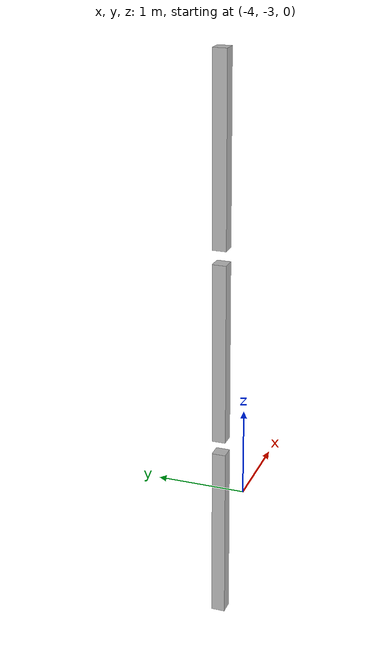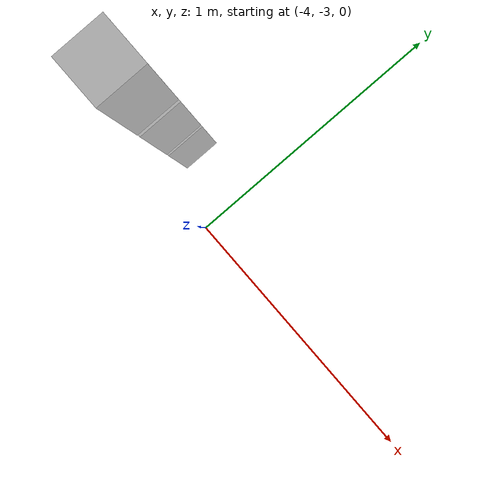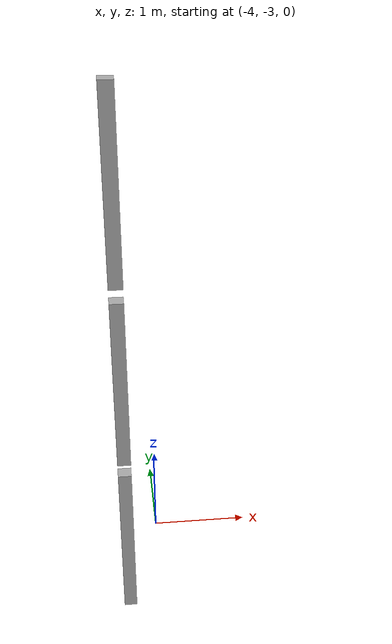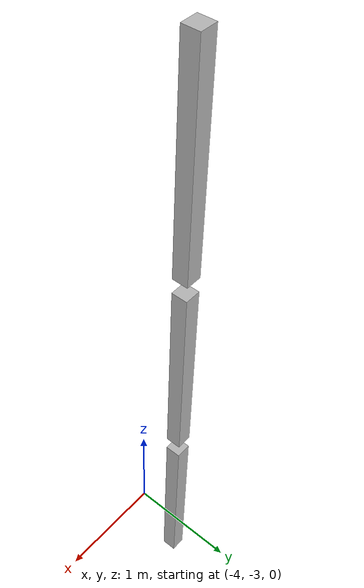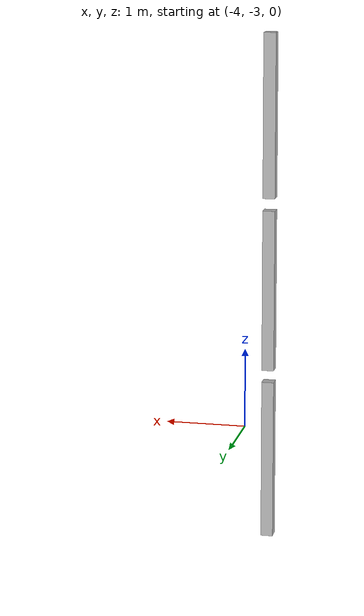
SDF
<sdf version="1.7">
 <world name="default">
  <model name="orthogonal_747_2.000.15_TS">
   <static>1</static>
   <link name="z_link_1_1_1">
    <inertial>
     <mass>1</mass>
     <inertia>
      <ixx>0.166667</ixx>
      <ixy>0</ixy>
      <ixz>0</ixz>
      <iyy>0.166667</iyy>
      <iyz>0</iyz>
      <izz>0.166667</izz>
     </inertia>
    </inertial>
    <pose>2.15 2.15 2.15 0 -0 0</pose>
    <visual name="visual_0">
     <laser_retro>1009</laser_retro>
     <geometry><box><size>0.15 1e-06 2</size></box></geometry>
     <material>
      <script><name>Gazebo/Grey</name><uri>file://media/materials/scripts/gazebo.material</uri></script>
      <shader type="pixel"><normal_map>__default__</normal_map></shader>
      <ambient>0.678 0.498 0.659 1</ambient>
      <diffuse>0.7 0.7 0.7 1</diffuse>
      <specular>0.01 0.01 0.01 1</specular>
      <emissive>0 0 0 1</emissive>
     </material>
     <pose>0 -0.075 0 0 -0 0</pose>
     <transparency>1</transparency>
    </visual>
    <visual name="visual_1">
     <laser_retro>1010</laser_retro>
     <geometry><box><size>0.15 1e-06 2</size></box></geometry>
     <material>
      <script><name>Gazebo/Grey</name><uri>file://media/materials/scripts/gazebo.material</uri></script>
      <shader type="pixel"><normal_map>__default__</normal_map></shader>
      <ambient>0.447 0.624 0.812 1</ambient>
      <diffuse>0.7 0.7 0.7 1</diffuse>
      <specular>0.01 0.01 0.01 1</specular>
      <emissive>0 0 0 1</emissive>
     </material>
     <pose>0 0.075 0 0 -0 0</pose>
     <transparency>1</transparency>
    </visual>
    <visual name="visual_2">
     <laser_retro>1011</laser_retro>
     <geometry><box><size>0.15 0.15 1e-06</size></box></geometry>
     <material>
      <script><name>Gazebo/Grey</name><uri>file://media/materials/scripts/gazebo.material</uri></script>
      <shader type="pixel"><normal_map>__default__</normal_map></shader>
      <ambient>0.988 0.686 0.243 1</ambient>
      <diffuse>0.7 0.7 0.7 1</diffuse>
      <specular>0.01 0.01 0.01 1</specular>
      <emissive>0 0 0 1</emissive>
     </material>
     <pose>0 0 -1 0 -0 0</pose>
     <transparency>1</transparency>
    </visual>
    <visual name="visual_3">
     <laser_retro>1012</laser_retro>
     <geometry><box><size>1e-06 0.15 2</size></box></geometry>
     <material>
      <script><name>Gazebo/Grey</name><uri>file://media/materials/scripts/gazebo.material</uri></script>
      <shader type="pixel"><normal_map>__default__</normal_map></shader>
      <ambient>0.988 0.914 0.31 1</ambient>
      <diffuse>0.7 0.7 0.7 1</diffuse>
      <specular>0.01 0.01 0.01 1</specular>
      <emissive>0 0 0 1</emissive>
     </material>
     <pose>0.075 0 0 0 -0 0</pose>
     <transparency>1</transparency>
    </visual>
    <visual name="visual_4">
     <laser_retro>1013</laser_retro>
     <geometry><box><size>0.15 0.15 1e-06</size></box></geometry>
     <material>
      <script><name>Gazebo/Grey</name><uri>file://media/materials/scripts/gazebo.material</uri></script>
      <shader type="pixel"><normal_map>__default__</normal_map></shader>
      <ambient>0.937 0.161 0.161 1</ambient>
      <diffuse>0.7 0.7 0.7 1</diffuse>
      <specular>0.01 0.01 0.01 1</specular>
      <emissive>0 0 0 1</emissive>
     </material>
     <pose>0 0 1 0 -0 0</pose>
     <transparency>1</transparency>
    </visual>
    <visual name="visual_5">
     <laser_retro>1014</laser_retro>
     <geometry><box><size>1e-06 0.15 2</size></box></geometry>
     <material>
      <script><name>Gazebo/Grey</name><uri>file://media/materials/scripts/gazebo.material</uri></script>
      <shader type="pixel"><normal_map>__default__</normal_map></shader>
      <ambient>0.541 0.886 0.204 1</ambient>
      <diffuse>0.7 0.7 0.7 1</diffuse>
      <specular>0.01 0.01 0.01 1</specular>
      <emissive>0 0 0 1</emissive>
     </material>
     <pose>-0.075 0 0 0 -0 0</pose>
     <transparency>1</transparency>
    </visual>
    <visual name="visual_texture">
     <geometry><box><size>0.149985 0.149985 1.9998</size></box></geometry>
     <material>
      <script>
       <uri>model://BASE_MODELS/simple_block_v2_textured/materials/scripts</uri>
       <uri>model://BASE_MODELS/simple_block_v2_textured/materials/textures</uri>
       <name>metal</name>
      </script>
     </material>
     <laser_retro>1015</laser_retro>
    </visual>
    <collision name="collision">
     <geometry><box><size>0.15 0.15 2</size></box></geometry>
     <surface>
      <friction>
       <ode><mu>1</mu><mu2>1</mu2><fdir1>0 0 0</fdir1><slip1>0</slip1><slip2>0</slip2></ode>
       <torsional>
        <coefficient>1</coefficient>
        <patch_radius>0</patch_radius>
        <surface_radius>0</surface_radius>
        <use_patch_radius>1</use_patch_radius>
        <ode><slip>0</slip></ode>
       </torsional>
      </friction>
      <bounce><restitution_coefficient>0</restitution_coefficient><threshold>1e+06</threshold></bounce>
      <contact>
       <collide_without_contact>0</collide_without_contact>
       <collide_without_contact_bitmask>1</collide_without_contact_bitmask>
       <collide_bitmask>1</collide_bitmask>
       <ode>
        <soft_cfm>0</soft_cfm>
        <soft_erp>0.2</soft_erp>
        <kp>1e+13</kp>
        <kd>1</kd>
        <max_vel>0.01</max_vel>
        <min_depth>0</min_depth>
       </ode>
       <bullet>
        <split_impulse>1</split_impulse>
        <split_impulse_penetration_threshold>-0.01</split_impulse_penetration_threshold>
        <soft_cfm>0</soft_cfm>
        <soft_erp>0.2</soft_erp>
        <kp>1e+13</kp>
        <kd>1</kd>
       </bullet>
      </contact>
     </surface>
    </collision>
   </link>
   <link name="z_link_2_1_1">
    <inertial>
     <mass>1</mass>
     <inertia>
      <ixx>0.166667</ixx>
      <ixy>0</ixy>
      <ixz>0</ixz>
      <iyy>0.166667</iyy>
      <iyz>0</iyz>
      <izz>0.166667</izz>
     </inertia>
    </inertial>
    <pose>2.15 2.15 4.3 0 -0 0</pose>
    <visual name="visual_0">
     <laser_retro>1912</laser_retro>
     <geometry><box><size>0.15 1e-06 2</size></box></geometry>
     <material>
      <script><name>Gazebo/Grey</name><uri>file://media/materials/scripts/gazebo.material</uri></script>
      <shader type="pixel"><normal_map>__default__</normal_map></shader>
      <ambient>0.678 0.498 0.659 1</ambient>
      <diffuse>0.7 0.7 0.7 1</diffuse>
      <specular>0.01 0.01 0.01 1</specular>
      <emissive>0 0 0 1</emissive>
     </material>
     <pose>0 -0.075 0 0 -0 0</pose>
     <transparency>1</transparency>
    </visual>
    <visual name="visual_1">
     <laser_retro>1913</laser_retro>
     <geometry><box><size>0.15 1e-06 2</size></box></geometry>
     <material>
      <script><name>Gazebo/Grey</name><uri>file://media/materials/scripts/gazebo.material</uri></script>
      <shader type="pixel"><normal_map>__default__</normal_map></shader>
      <ambient>0.447 0.624 0.812 1</ambient>
      <diffuse>0.7 0.7 0.7 1</diffuse>
      <specular>0.01 0.01 0.01 1</specular>
      <emissive>0 0 0 1</emissive>
     </material>
     <pose>0 0.075 0 0 -0 0</pose>
     <transparency>1</transparency>
    </visual>
    <visual name="visual_2">
     <laser_retro>1914</laser_retro>
     <geometry><box><size>0.15 0.15 1e-06</size></box></geometry>
     <material>
      <script><name>Gazebo/Grey</name><uri>file://media/materials/scripts/gazebo.material</uri></script>
      <shader type="pixel"><normal_map>__default__</normal_map></shader>
      <ambient>0.988 0.686 0.243 1</ambient>
      <diffuse>0.7 0.7 0.7 1</diffuse>
      <specular>0.01 0.01 0.01 1</specular>
      <emissive>0 0 0 1</emissive>
     </material>
     <pose>0 0 -1 0 -0 0</pose>
     <transparency>1</transparency>
    </visual>
    <visual name="visual_3">
     <laser_retro>1915</laser_retro>
     <geometry><box><size>1e-06 0.15 2</size></box></geometry>
     <material>
      <script><name>Gazebo/Grey</name><uri>file://media/materials/scripts/gazebo.material</uri></script>
      <shader type="pixel"><normal_map>__default__</normal_map></shader>
      <ambient>0.988 0.914 0.31 1</ambient>
      <diffuse>0.7 0.7 0.7 1</diffuse>
      <specular>0.01 0.01 0.01 1</specular>
      <emissive>0 0 0 1</emissive>
     </material>
     <pose>0.075 0 0 0 -0 0</pose>
     <transparency>1</transparency>
    </visual>
    <visual name="visual_4">
     <laser_retro>1916</laser_retro>
     <geometry><box><size>0.15 0.15 1e-06</size></box></geometry>
     <material>
      <script><name>Gazebo/Grey</name><uri>file://media/materials/scripts/gazebo.material</uri></script>
      <shader type="pixel"><normal_map>__default__</normal_map></shader>
      <ambient>0.937 0.161 0.161 1</ambient>
      <diffuse>0.7 0.7 0.7 1</diffuse>
      <specular>0.01 0.01 0.01 1</specular>
      <emissive>0 0 0 1</emissive>
     </material>
     <pose>0 0 1 0 -0 0</pose>
     <transparency>1</transparency>
    </visual>
    <visual name="visual_5">
     <laser_retro>1917</laser_retro>
     <geometry><box><size>1e-06 0.15 2</size></box></geometry>
     <material>
      <script><name>Gazebo/Grey</name><uri>file://media/materials/scripts/gazebo.material</uri></script>
      <shader type="pixel"><normal_map>__default__</normal_map></shader>
      <ambient>0.541 0.886 0.204 1</ambient>
      <diffuse>0.7 0.7 0.7 1</diffuse>
      <specular>0.01 0.01 0.01 1</specular>
      <emissive>0 0 0 1</emissive>
     </material>
     <pose>-0.075 0 0 0 -0 0</pose>
     <transparency>1</transparency>
    </visual>
    <visual name="visual_texture">
     <geometry><box><size>0.149985 0.149985 1.9998</size></box></geometry>
     <material>
      <script>
       <uri>model://BASE_MODELS/simple_block_v2_textured/materials/scripts</uri>
       <uri>model://BASE_MODELS/simple_block_v2_textured/materials/textures</uri>
       <name>metal</name>
      </script>
     </material>
     <laser_retro>1918</laser_retro>
    </visual>
    <collision name="collision">
     <geometry><box><size>0.15 0.15 2</size></box></geometry>
     <surface>
      <friction>
       <ode><mu>1</mu><mu2>1</mu2><fdir1>0 0 0</fdir1><slip1>0</slip1><slip2>0</slip2></ode>
       <torsional>
        <coefficient>1</coefficient>
        <patch_radius>0</patch_radius>
        <surface_radius>0</surface_radius>
        <use_patch_radius>1</use_patch_radius>
        <ode><slip>0</slip></ode>
       </torsional>
      </friction>
      <bounce><restitution_coefficient>0</restitution_coefficient><threshold>1e+06</threshold></bounce>
      <contact>
       <collide_without_contact>0</collide_without_contact>
       <collide_without_contact_bitmask>1</collide_without_contact_bitmask>
       <collide_bitmask>1</collide_bitmask>
       <ode>
        <soft_cfm>0</soft_cfm>
        <soft_erp>0.2</soft_erp>
        <kp>1e+13</kp>
        <kd>1</kd>
        <max_vel>0.01</max_vel>
        <min_depth>0</min_depth>
       </ode>
       <bullet>
        <split_impulse>1</split_impulse>
        <split_impulse_penetration_threshold>-0.01</split_impulse_penetration_threshold>
        <soft_cfm>0</soft_cfm>
        <soft_erp>0.2</soft_erp>
        <kp>1e+13</kp>
        <kd>1</kd>
       </bullet>
      </contact>
     </surface>
    </collision>
   </link>
   <link name="z_link_3_1_1">
    <inertial>
     <mass>1</mass>
     <inertia>
      <ixx>0.166667</ixx>
      <ixy>0</ixy>
      <ixz>0</ixz>
      <iyy>0.166667</iyy>
      <iyz>0</iyz>
      <izz>0.166667</izz>
     </inertia>
    </inertial>
    <pose>2.15 2.15 6.45 0 -0 0</pose>
    <visual name="visual_0">
     <laser_retro>2815</laser_retro>
     <geometry><box><size>0.15 1e-06 2</size></box></geometry>
     <material>
      <script><name>Gazebo/Grey</name><uri>file://media/materials/scripts/gazebo.material</uri></script>
      <shader type="pixel"><normal_map>__default__</normal_map></shader>
      <ambient>0.678 0.498 0.659 1</ambient>
      <diffuse>0.7 0.7 0.7 1</diffuse>
      <specular>0.01 0.01 0.01 1</specular>
      <emissive>0 0 0 1</emissive>
     </material>
     <pose>0 -0.075 0 0 -0 0</pose>
     <transparency>1</transparency>
    </visual>
    <visual name="visual_1">
     <laser_retro>2816</laser_retro>
     <geometry><box><size>0.15 1e-06 2</size></box></geometry>
     <material>
      <script><name>Gazebo/Grey</name><uri>file://media/materials/scripts/gazebo.material</uri></script>
      <shader type="pixel"><normal_map>__default__</normal_map></shader>
      <ambient>0.447 0.624 0.812 1</ambient>
      <diffuse>0.7 0.7 0.7 1</diffuse>
      <specular>0.01 0.01 0.01 1</specular>
      <emissive>0 0 0 1</emissive>
     </material>
     <pose>0 0.075 0 0 -0 0</pose>
     <transparency>1</transparency>
    </visual>
    <visual name="visual_2">
     <laser_retro>2817</laser_retro>
     <geometry><box><size>0.15 0.15 1e-06</size></box></geometry>
     <material>
      <script><name>Gazebo/Grey</name><uri>file://media/materials/scripts/gazebo.material</uri></script>
      <shader type="pixel"><normal_map>__default__</normal_map></shader>
      <ambient>0.988 0.686 0.243 1</ambient>
      <diffuse>0.7 0.7 0.7 1</diffuse>
      <specular>0.01 0.01 0.01 1</specular>
      <emissive>0 0 0 1</emissive>
     </material>
     <pose>0 0 -1 0 -0 0</pose>
     <transparency>1</transparency>
    </visual>
    <visual name="visual_3">
     <laser_retro>2818</laser_retro>
     <geometry><box><size>1e-06 0.15 2</size></box></geometry>
     <material>
      <script><name>Gazebo/Grey</name><uri>file://media/materials/scripts/gazebo.material</uri></script>
      <shader type="pixel"><normal_map>__default__</normal_map></shader>
      <ambient>0.988 0.914 0.31 1</ambient>
      <diffuse>0.7 0.7 0.7 1</diffuse>
      <specular>0.01 0.01 0.01 1</specular>
      <emissive>0 0 0 1</emissive>
     </material>
     <pose>0.075 0 0 0 -0 0</pose>
     <transparency>1</transparency>
    </visual>
    <visual name="visual_4">
     <laser_retro>2819</laser_retro>
     <geometry><box><size>0.15 0.15 1e-06</size></box></geometry>
     <material>
      <script><name>Gazebo/Grey</name><uri>file://media/materials/scripts/gazebo.material</uri></script>
      <shader type="pixel"><normal_map>__default__</normal_map></shader>
      <ambient>0.937 0.161 0.161 1</ambient>
      <diffuse>0.7 0.7 0.7 1</diffuse>
      <specular>0.01 0.01 0.01 1</specular>
      <emissive>0 0 0 1</emissive>
     </material>
     <pose>0 0 1 0 -0 0</pose>
     <transparency>1</transparency>
    </visual>
    <visual name="visual_5">
     <laser_retro>2820</laser_retro>
     <geometry><box><size>1e-06 0.15 2</size></box></geometry>
     <material>
      <script><name>Gazebo/Grey</name><uri>file://media/materials/scripts/gazebo.material</uri></script>
      <shader type="pixel"><normal_map>__default__</normal_map></shader>
      <ambient>0.541 0.886 0.204 1</ambient>
      <diffuse>0.7 0.7 0.7 1</diffuse>
      <specular>0.01 0.01 0.01 1</specular>
      <emissive>0 0 0 1</emissive>
     </material>
     <pose>-0.075 0 0 0 -0 0</pose>
     <transparency>1</transparency>
    </visual>
    <visual name="visual_texture">
     <geometry><box><size>0.149985 0.149985 1.9998</size></box></geometry>
     <material>
      <script>
       <uri>model://BASE_MODELS/simple_block_v2_textured/materials/scripts</uri>
       <uri>model://BASE_MODELS/simple_block_v2_textured/materials/textures</uri>
       <name>metal</name>
      </script>
     </material>
     <laser_retro>2821</laser_retro>
    </visual>
    <collision name="collision">
     <geometry><box><size>0.15 0.15 2</size></box></geometry>
     <surface>
      <friction>
       <ode><mu>1</mu><mu2>1</mu2><fdir1>0 0 0</fdir1><slip1>0</slip1><slip2>0</slip2></ode>
       <torsional>
        <coefficient>1</coefficient>
        <patch_radius>0</patch_radius>
        <surface_radius>0</surface_radius>
        <use_patch_radius>1</use_patch_radius>
        <ode><slip>0</slip></ode>
       </torsional>
      </friction>
      <bounce><restitution_coefficient>0</restitution_coefficient><threshold>1e+06</threshold></bounce>
      <contact>
       <collide_without_contact>0</collide_without_contact>
       <collide_without_contact_bitmask>1</collide_without_contact_bitmask>
       <collide_bitmask>1</collide_bitmask>
       <ode>
        <soft_cfm>0</soft_cfm>
        <soft_erp>0.2</soft_erp>
        <kp>1e+13</kp>
        <kd>1</kd>
        <max_vel>0.01</max_vel>
        <min_depth>0</min_depth>
       </ode>
       <bullet>
        <split_impulse>1</split_impulse>
        <split_impulse_penetration_threshold>-0.01</split_impulse_penetration_threshold>
        <soft_cfm>0</soft_cfm>
        <soft_erp>0.2</soft_erp>
        <kp>1e+13</kp>
        <kd>1</kd>
       </bullet>
      </contact>
     </surface>
    </collision>
   </link>
   <pose>-6.47624 -5 -2.5 0 -0 0</pose>
  </model>
 </world>
</sdf>
